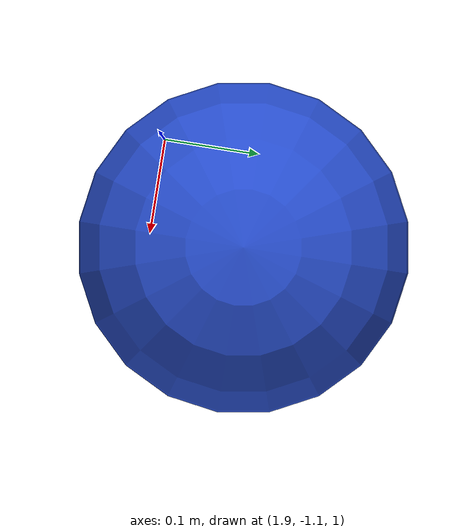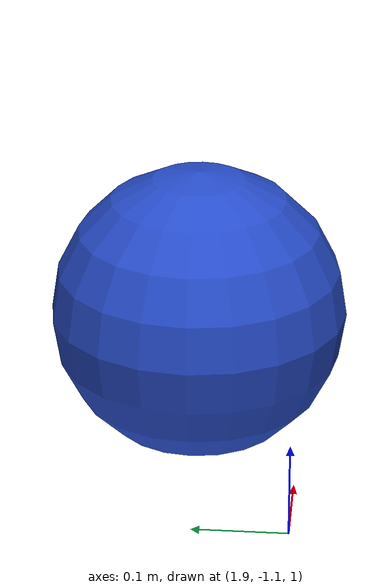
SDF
<?xml version="1.0" ?>
<sdf version="1.4">
  <!-- We use a custom world for the rrbot so that the camera angle is launched correctly -->

  <world name="default">
    <!-- Included light -->
    <include>
      <uri>https://fuel.gazebosim.org/1.0/OpenRobotics/models/Sun</uri>
    </include>

    <!-- Included model -->
    <include>
      <uri>https://fuel.gazebosim.org/1.0/OpenRobotics/models/Ground Plane</uri>
    </include>

    <include>
      <uri>
        model://spherical_object
      </uri>
      <name>spherical_object</name>
      <pose>1 -0.5 0.6 0 0 0</pose>
    </include>

    <gravity>0 0 0</gravity>

    <!-- Focus camera on tall pendulum -->
    <gui fullscreen='0'>
      <camera name='user_camera'>
        <pose>4.927360 -4.376610 3.740080 0.000000 0.275643 2.356190</pose>
        <view_controller>orbit</view_controller>
      </camera>
    </gui>

    <!-- World control -->

  </world>
</sdf>

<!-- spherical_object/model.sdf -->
<sdf version="1.6">
  <model name="spherical_object">
    <link name="link">
      <pose>1 -0.5 0.6 0 0 0</pose>
      <gravity>0</gravity>
      <inertial>
        <pose>0 0 0 0 0 0</pose>
        <mass>0.001</mass>
        <inertia>
          <ixx>3.7499999999999997e-06</ixx>
          <ixy>0.0</ixy>
          <ixz>0.0</ixz>
          <iyy>1.8750008333333333e-06</iyy>
          <iyz>0.0</iyz>
          <izz>1.8750008333333333e-06</izz>
        </inertia>
      </inertial>
      <visual name='visual'>
        <pose>0.00005 0 0 0 0 0</pose>
        <geometry>
          <sphere>
            <radius>0.15</radius>
          </sphere>
        </geometry>
        <material>
          <lighting>1</lighting>
          <script>
            <uri>file://media/materials/scripts/gazebo.material</uri>
            <name>Gazebo/Blue</name>
          </script>
          <shader type='pixel'>
            <normal_map>__default__</normal_map>
          </shader>
        </material>
        <transparency>0</transparency>
        <cast_shadows>1</cast_shadows>
      </visual>
      <collision name="collision">
        <pose>0 0 0 0 0 0</pose>
        <geometry>
            <sphere>
                <radius>0.15</radius>
            </sphere>
        </geometry>
      </collision>
    </link>
    <static>1</static>
  </model>
</sdf>
